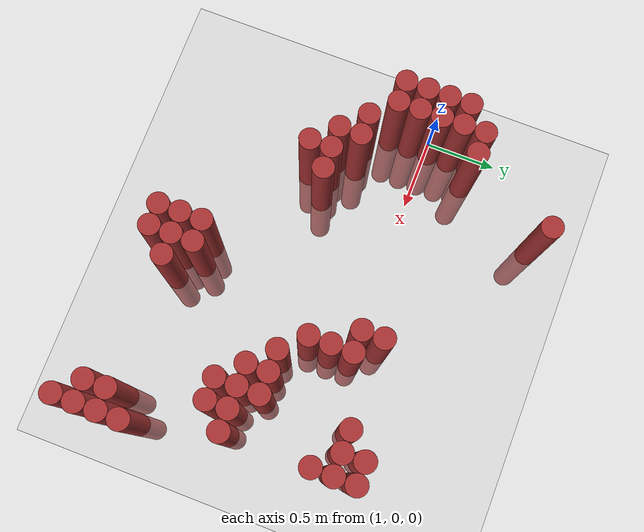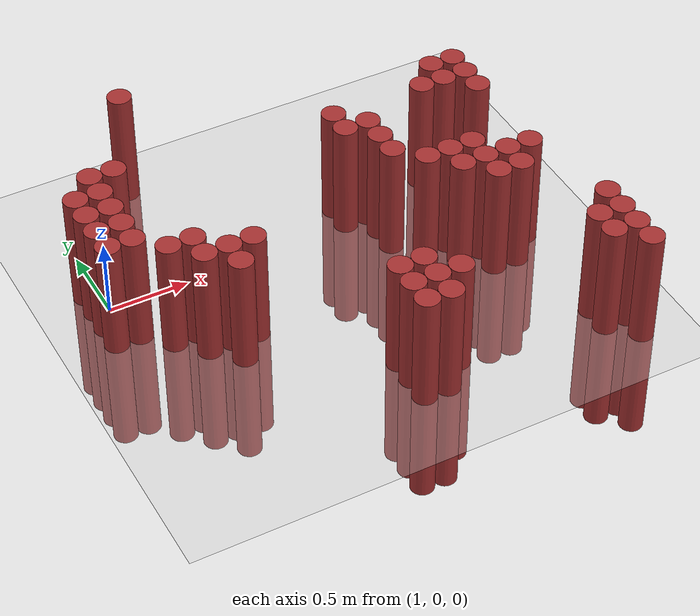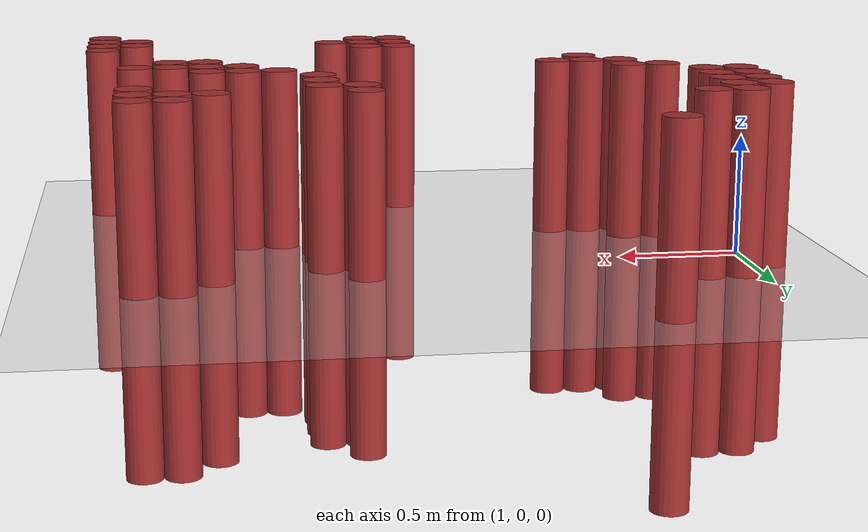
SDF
<sdf version="1.6">
 <world name="default">
  <model name="ground_plane">
   <static>1</static>
   <link name="link">
    <collision name="collision">
     <geometry><plane><normal>0 0 1</normal><size>100 100</size></plane></geometry>
     <surface><friction><ode><mu>100</mu><mu2>50</mu2></ode></friction></surface>
    </collision>
    <visual name="visual">
     <cast_shadows>0</cast_shadows>
     <geometry><plane><normal>0 0 1</normal><size>100 100</size></plane></geometry>
     <material>
      <script><uri>file://media/materials/scripts/gazebo.material</uri><name>Gazebo/Grey</name></script>
     </material>
    </visual>
   </link>
  </model>
  <model name="unit_cylinder_438">
   <static>1</static>
   <pose>0.925000 -0.275000 0.000000 0.000000 0.000000 0.000000</pose>
   <link name="link">
    <inertial>
     <mass>1</mass>
     <inertia><ixx>0.145833</ixx><ixy>0</ixy><ixz>0</ixz><iyy>0.145833</iyy><iyz>0</iyz><izz>0.125</izz></inertia>
    </inertial>
    <collision name="collision">
     <geometry><cylinder><radius>0.075000</radius><length>1.5</length></cylinder></geometry>
    </collision>
    <visual name="visual">
     <geometry><cylinder><radius>0.075000</radius><length>1.5</length></cylinder></geometry>
     <material>
      <ambient>0.648000 0.192000 0.192000 1</ambient>
      <diffuse>0.648000 0.192000 0.192000 1</diffuse>
     </material>
     <material>
      <script><name>Gazebo/Grey</name><uri>file://media/materials/scripts/gazebo.material</uri></script>
     </material>
    </visual>
   </link>
  </model>
  <model name="unit_cylinder_439">
   <static>1</static>
   <pose>0.925000 -0.125000 0.000000 0.000000 0.000000 0.000000</pose>
   <link name="link">
    <inertial>
     <mass>1</mass>
     <inertia><ixx>0.145833</ixx><ixy>0</ixy><ixz>0</ixz><iyy>0.145833</iyy><iyz>0</iyz><izz>0.125</izz></inertia>
    </inertial>
    <collision name="collision">
     <geometry><cylinder><radius>0.075000</radius><length>1.5</length></cylinder></geometry>
    </collision>
    <visual name="visual">
     <geometry><cylinder><radius>0.075000</radius><length>1.5</length></cylinder></geometry>
     <material>
      <ambient>0.648000 0.192000 0.192000 1</ambient>
      <diffuse>0.648000 0.192000 0.192000 1</diffuse>
     </material>
     <material>
      <script><name>Gazebo/Grey</name><uri>file://media/materials/scripts/gazebo.material</uri></script>
     </material>
    </visual>
   </link>
  </model>
  <model name="unit_cylinder_440">
   <static>1</static>
   <pose>0.925000 0.025000 0.000000 0.000000 0.000000 0.000000</pose>
   <link name="link">
    <inertial>
     <mass>1</mass>
     <inertia><ixx>0.145833</ixx><ixy>0</ixy><ixz>0</ixz><iyy>0.145833</iyy><iyz>0</iyz><izz>0.125</izz></inertia>
    </inertial>
    <collision name="collision">
     <geometry><cylinder><radius>0.075000</radius><length>1.5</length></cylinder></geometry>
    </collision>
    <visual name="visual">
     <geometry><cylinder><radius>0.075000</radius><length>1.5</length></cylinder></geometry>
     <material>
      <ambient>0.648000 0.192000 0.192000 1</ambient>
      <diffuse>0.648000 0.192000 0.192000 1</diffuse>
     </material>
     <material>
      <script><name>Gazebo/Grey</name><uri>file://media/materials/scripts/gazebo.material</uri></script>
     </material>
    </visual>
   </link>
  </model>
  <model name="unit_cylinder_441">
   <static>1</static>
   <pose>0.925000 0.175000 0.000000 0.000000 0.000000 0.000000</pose>
   <link name="link">
    <inertial>
     <mass>1</mass>
     <inertia><ixx>0.145833</ixx><ixy>0</ixy><ixz>0</ixz><iyy>0.145833</iyy><iyz>0</iyz><izz>0.125</izz></inertia>
    </inertial>
    <collision name="collision">
     <geometry><cylinder><radius>0.075000</radius><length>1.5</length></cylinder></geometry>
    </collision>
    <visual name="visual">
     <geometry><cylinder><radius>0.075000</radius><length>1.5</length></cylinder></geometry>
     <material>
      <ambient>0.648000 0.192000 0.192000 1</ambient>
      <diffuse>0.648000 0.192000 0.192000 1</diffuse>
     </material>
     <material>
      <script><name>Gazebo/Grey</name><uri>file://media/materials/scripts/gazebo.material</uri></script>
     </material>
    </visual>
   </link>
  </model>
  <model name="unit_cylinder_445">
   <static>1</static>
   <pose>1.075000 -0.275000 0.000000 0.000000 0.000000 0.000000</pose>
   <link name="link">
    <inertial>
     <mass>1</mass>
     <inertia><ixx>0.145833</ixx><ixy>0</ixy><ixz>0</ixz><iyy>0.145833</iyy><iyz>0</iyz><izz>0.125</izz></inertia>
    </inertial>
    <collision name="collision">
     <geometry><cylinder><radius>0.075000</radius><length>1.5</length></cylinder></geometry>
    </collision>
    <visual name="visual">
     <geometry><cylinder><radius>0.075000</radius><length>1.5</length></cylinder></geometry>
     <material>
      <ambient>0.648000 0.192000 0.192000 1</ambient>
      <diffuse>0.648000 0.192000 0.192000 1</diffuse>
     </material>
     <material>
      <script><name>Gazebo/Grey</name><uri>file://media/materials/scripts/gazebo.material</uri></script>
     </material>
    </visual>
   </link>
  </model>
  <model name="unit_cylinder_446">
   <static>1</static>
   <pose>1.075000 -0.125000 0.000000 0.000000 0.000000 0.000000</pose>
   <link name="link">
    <inertial>
     <mass>1</mass>
     <inertia><ixx>0.145833</ixx><ixy>0</ixy><ixz>0</ixz><iyy>0.145833</iyy><iyz>0</iyz><izz>0.125</izz></inertia>
    </inertial>
    <collision name="collision">
     <geometry><cylinder><radius>0.075000</radius><length>1.5</length></cylinder></geometry>
    </collision>
    <visual name="visual">
     <geometry><cylinder><radius>0.075000</radius><length>1.5</length></cylinder></geometry>
     <material>
      <ambient>0.648000 0.192000 0.192000 1</ambient>
      <diffuse>0.648000 0.192000 0.192000 1</diffuse>
     </material>
     <material>
      <script><name>Gazebo/Grey</name><uri>file://media/materials/scripts/gazebo.material</uri></script>
     </material>
    </visual>
   </link>
  </model>
  <model name="unit_cylinder_447">
   <static>1</static>
   <pose>1.075000 0.025000 0.000000 0.000000 0.000000 0.000000</pose>
   <link name="link">
    <inertial>
     <mass>1</mass>
     <inertia><ixx>0.145833</ixx><ixy>0</ixy><ixz>0</ixz><iyy>0.145833</iyy><iyz>0</iyz><izz>0.125</izz></inertia>
    </inertial>
    <collision name="collision">
     <geometry><cylinder><radius>0.075000</radius><length>1.5</length></cylinder></geometry>
    </collision>
    <visual name="visual">
     <geometry><cylinder><radius>0.075000</radius><length>1.5</length></cylinder></geometry>
     <material>
      <ambient>0.648000 0.192000 0.192000 1</ambient>
      <diffuse>0.648000 0.192000 0.192000 1</diffuse>
     </material>
     <material>
      <script><name>Gazebo/Grey</name><uri>file://media/materials/scripts/gazebo.material</uri></script>
     </material>
    </visual>
   </link>
  </model>
  <model name="unit_cylinder_448">
   <static>1</static>
   <pose>1.075000 0.175000 0.000000 0.000000 0.000000 0.000000</pose>
   <link name="link">
    <inertial>
     <mass>1</mass>
     <inertia><ixx>0.145833</ixx><ixy>0</ixy><ixz>0</ixz><iyy>0.145833</iyy><iyz>0</iyz><izz>0.125</izz></inertia>
    </inertial>
    <collision name="collision">
     <geometry><cylinder><radius>0.075000</radius><length>1.5</length></cylinder></geometry>
    </collision>
    <visual name="visual">
     <geometry><cylinder><radius>0.075000</radius><length>1.5</length></cylinder></geometry>
     <material>
      <ambient>0.648000 0.192000 0.192000 1</ambient>
      <diffuse>0.648000 0.192000 0.192000 1</diffuse>
     </material>
     <material>
      <script><name>Gazebo/Grey</name><uri>file://media/materials/scripts/gazebo.material</uri></script>
     </material>
    </visual>
   </link>
  </model>
  <model name="unit_cylinder_449">
   <static>1</static>
   <pose>1.075000 0.325000 0.000000 0.000000 0.000000 0.000000</pose>
   <link name="link">
    <inertial>
     <mass>1</mass>
     <inertia><ixx>0.145833</ixx><ixy>0</ixy><ixz>0</ixz><iyy>0.145833</iyy><iyz>0</iyz><izz>0.125</izz></inertia>
    </inertial>
    <collision name="collision">
     <geometry><cylinder><radius>0.075000</radius><length>1.5</length></cylinder></geometry>
    </collision>
    <visual name="visual">
     <geometry><cylinder><radius>0.075000</radius><length>1.5</length></cylinder></geometry>
     <material>
      <ambient>0.648000 0.192000 0.192000 1</ambient>
      <diffuse>0.648000 0.192000 0.192000 1</diffuse>
     </material>
     <material>
      <script><name>Gazebo/Grey</name><uri>file://media/materials/scripts/gazebo.material</uri></script>
     </material>
    </visual>
   </link>
  </model>
  <model name="unit_cylinder_453">
   <static>1</static>
   <pose>1.225000 -0.425000 0.000000 0.000000 0.000000 0.000000</pose>
   <link name="link">
    <inertial>
     <mass>1</mass>
     <inertia><ixx>0.145833</ixx><ixy>0</ixy><ixz>0</ixz><iyy>0.145833</iyy><iyz>0</iyz><izz>0.125</izz></inertia>
    </inertial>
    <collision name="collision">
     <geometry><cylinder><radius>0.075000</radius><length>1.5</length></cylinder></geometry>
    </collision>
    <visual name="visual">
     <geometry><cylinder><radius>0.075000</radius><length>1.5</length></cylinder></geometry>
     <material>
      <ambient>0.648000 0.192000 0.192000 1</ambient>
      <diffuse>0.648000 0.192000 0.192000 1</diffuse>
     </material>
     <material>
      <script><name>Gazebo/Grey</name><uri>file://media/materials/scripts/gazebo.material</uri></script>
     </material>
    </visual>
   </link>
  </model>
  <model name="unit_cylinder_454">
   <static>1</static>
   <pose>1.225000 0.325000 0.000000 0.000000 0.000000 0.000000</pose>
   <link name="link">
    <inertial>
     <mass>1</mass>
     <inertia><ixx>0.145833</ixx><ixy>0</ixy><ixz>0</ixz><iyy>0.145833</iyy><iyz>0</iyz><izz>0.125</izz></inertia>
    </inertial>
    <collision name="collision">
     <geometry><cylinder><radius>0.075000</radius><length>1.5</length></cylinder></geometry>
    </collision>
    <visual name="visual">
     <geometry><cylinder><radius>0.075000</radius><length>1.5</length></cylinder></geometry>
     <material>
      <ambient>0.648000 0.192000 0.192000 1</ambient>
      <diffuse>0.648000 0.192000 0.192000 1</diffuse>
     </material>
     <material>
      <script><name>Gazebo/Grey</name><uri>file://media/materials/scripts/gazebo.material</uri></script>
     </material>
    </visual>
   </link>
  </model>
  <model name="unit_cylinder_458">
   <static>1</static>
   <pose>1.375000 -0.575000 0.000000 0.000000 0.000000 0.000000</pose>
   <link name="link">
    <inertial>
     <mass>1</mass>
     <inertia><ixx>0.145833</ixx><ixy>0</ixy><ixz>0</ixz><iyy>0.145833</iyy><iyz>0</iyz><izz>0.125</izz></inertia>
    </inertial>
    <collision name="collision">
     <geometry><cylinder><radius>0.075000</radius><length>1.5</length></cylinder></geometry>
    </collision>
    <visual name="visual">
     <geometry><cylinder><radius>0.075000</radius><length>1.5</length></cylinder></geometry>
     <material>
      <ambient>0.648000 0.192000 0.192000 1</ambient>
      <diffuse>0.648000 0.192000 0.192000 1</diffuse>
     </material>
     <material>
      <script><name>Gazebo/Grey</name><uri>file://media/materials/scripts/gazebo.material</uri></script>
     </material>
    </visual>
   </link>
  </model>
  <model name="unit_cylinder_459">
   <static>1</static>
   <pose>1.375000 -0.425000 0.000000 0.000000 0.000000 0.000000</pose>
   <link name="link">
    <inertial>
     <mass>1</mass>
     <inertia><ixx>0.145833</ixx><ixy>0</ixy><ixz>0</ixz><iyy>0.145833</iyy><iyz>0</iyz><izz>0.125</izz></inertia>
    </inertial>
    <collision name="collision">
     <geometry><cylinder><radius>0.075000</radius><length>1.5</length></cylinder></geometry>
    </collision>
    <visual name="visual">
     <geometry><cylinder><radius>0.075000</radius><length>1.5</length></cylinder></geometry>
     <material>
      <ambient>0.648000 0.192000 0.192000 1</ambient>
      <diffuse>0.648000 0.192000 0.192000 1</diffuse>
     </material>
     <material>
      <script><name>Gazebo/Grey</name><uri>file://media/materials/scripts/gazebo.material</uri></script>
     </material>
    </visual>
   </link>
  </model>
  <model name="unit_cylinder_464">
   <static>1</static>
   <pose>1.525000 -0.725000 0.000000 0.000000 0.000000 0.000000</pose>
   <link name="link">
    <inertial>
     <mass>1</mass>
     <inertia><ixx>0.145833</ixx><ixy>0</ixy><ixz>0</ixz><iyy>0.145833</iyy><iyz>0</iyz><izz>0.125</izz></inertia>
    </inertial>
    <collision name="collision">
     <geometry><cylinder><radius>0.075000</radius><length>1.5</length></cylinder></geometry>
    </collision>
    <visual name="visual">
     <geometry><cylinder><radius>0.075000</radius><length>1.5</length></cylinder></geometry>
     <material>
      <ambient>0.648000 0.192000 0.192000 1</ambient>
      <diffuse>0.648000 0.192000 0.192000 1</diffuse>
     </material>
     <material>
      <script><name>Gazebo/Grey</name><uri>file://media/materials/scripts/gazebo.material</uri></script>
     </material>
    </visual>
   </link>
  </model>
  <model name="unit_cylinder_465">
   <static>1</static>
   <pose>1.525000 -0.575000 0.000000 0.000000 0.000000 0.000000</pose>
   <link name="link">
    <inertial>
     <mass>1</mass>
     <inertia><ixx>0.145833</ixx><ixy>0</ixy><ixz>0</ixz><iyy>0.145833</iyy><iyz>0</iyz><izz>0.125</izz></inertia>
    </inertial>
    <collision name="collision">
     <geometry><cylinder><radius>0.075000</radius><length>1.5</length></cylinder></geometry>
    </collision>
    <visual name="visual">
     <geometry><cylinder><radius>0.075000</radius><length>1.5</length></cylinder></geometry>
     <material>
      <ambient>0.648000 0.192000 0.192000 1</ambient>
      <diffuse>0.648000 0.192000 0.192000 1</diffuse>
     </material>
     <material>
      <script><name>Gazebo/Grey</name><uri>file://media/materials/scripts/gazebo.material</uri></script>
     </material>
    </visual>
   </link>
  </model>
  <model name="unit_cylinder_466">
   <static>1</static>
   <pose>1.525000 0.925000 0.000000 0.000000 0.000000 0.000000</pose>
   <link name="link">
    <inertial>
     <mass>1</mass>
     <inertia><ixx>0.145833</ixx><ixy>0</ixy><ixz>0</ixz><iyy>0.145833</iyy><iyz>0</iyz><izz>0.125</izz></inertia>
    </inertial>
    <collision name="collision">
     <geometry><cylinder><radius>0.075000</radius><length>1.5</length></cylinder></geometry>
    </collision>
    <visual name="visual">
     <geometry><cylinder><radius>0.075000</radius><length>1.5</length></cylinder></geometry>
     <material>
      <ambient>0.648000 0.192000 0.192000 1</ambient>
      <diffuse>0.648000 0.192000 0.192000 1</diffuse>
     </material>
     <material>
      <script><name>Gazebo/Grey</name><uri>file://media/materials/scripts/gazebo.material</uri></script>
     </material>
    </visual>
   </link>
  </model>
  <model name="unit_cylinder_472">
   <static>1</static>
   <pose>1.675000 -0.575000 0.000000 0.000000 0.000000 0.000000</pose>
   <link name="link">
    <inertial>
     <mass>1</mass>
     <inertia><ixx>0.145833</ixx><ixy>0</ixy><ixz>0</ixz><iyy>0.145833</iyy><iyz>0</iyz><izz>0.125</izz></inertia>
    </inertial>
    <collision name="collision">
     <geometry><cylinder><radius>0.075000</radius><length>1.5</length></cylinder></geometry>
    </collision>
    <visual name="visual">
     <geometry><cylinder><radius>0.075000</radius><length>1.5</length></cylinder></geometry>
     <material>
      <ambient>0.648000 0.192000 0.192000 1</ambient>
      <diffuse>0.648000 0.192000 0.192000 1</diffuse>
     </material>
     <material>
      <script><name>Gazebo/Grey</name><uri>file://media/materials/scripts/gazebo.material</uri></script>
     </material>
    </visual>
   </link>
  </model>
  <model name="unit_cylinder_488">
   <static>1</static>
   <pose>2.275000 -1.475000 0.000000 0.000000 0.000000 0.000000</pose>
   <link name="link">
    <inertial>
     <mass>1</mass>
     <inertia><ixx>0.145833</ixx><ixy>0</ixy><ixz>0</ixz><iyy>0.145833</iyy><iyz>0</iyz><izz>0.125</izz></inertia>
    </inertial>
    <collision name="collision">
     <geometry><cylinder><radius>0.075000</radius><length>1.5</length></cylinder></geometry>
    </collision>
    <visual name="visual">
     <geometry><cylinder><radius>0.075000</radius><length>1.5</length></cylinder></geometry>
     <material>
      <ambient>0.648000 0.192000 0.192000 1</ambient>
      <diffuse>0.648000 0.192000 0.192000 1</diffuse>
     </material>
     <material>
      <script><name>Gazebo/Grey</name><uri>file://media/materials/scripts/gazebo.material</uri></script>
     </material>
    </visual>
   </link>
  </model>
  <model name="unit_cylinder_489">
   <static>1</static>
   <pose>2.275000 -1.325000 0.000000 0.000000 0.000000 0.000000</pose>
   <link name="link">
    <inertial>
     <mass>1</mass>
     <inertia><ixx>0.145833</ixx><ixy>0</ixy><ixz>0</ixz><iyy>0.145833</iyy><iyz>0</iyz><izz>0.125</izz></inertia>
    </inertial>
    <collision name="collision">
     <geometry><cylinder><radius>0.075000</radius><length>1.5</length></cylinder></geometry>
    </collision>
    <visual name="visual">
     <geometry><cylinder><radius>0.075000</radius><length>1.5</length></cylinder></geometry>
     <material>
      <ambient>0.648000 0.192000 0.192000 1</ambient>
      <diffuse>0.648000 0.192000 0.192000 1</diffuse>
     </material>
     <material>
      <script><name>Gazebo/Grey</name><uri>file://media/materials/scripts/gazebo.material</uri></script>
     </material>
    </visual>
   </link>
  </model>
  <model name="unit_cylinder_490">
   <static>1</static>
   <pose>2.275000 -1.175000 0.000000 0.000000 0.000000 0.000000</pose>
   <link name="link">
    <inertial>
     <mass>1</mass>
     <inertia><ixx>0.145833</ixx><ixy>0</ixy><ixz>0</ixz><iyy>0.145833</iyy><iyz>0</iyz><izz>0.125</izz></inertia>
    </inertial>
    <collision name="collision">
     <geometry><cylinder><radius>0.075000</radius><length>1.5</length></cylinder></geometry>
    </collision>
    <visual name="visual">
     <geometry><cylinder><radius>0.075000</radius><length>1.5</length></cylinder></geometry>
     <material>
      <ambient>0.648000 0.192000 0.192000 1</ambient>
      <diffuse>0.648000 0.192000 0.192000 1</diffuse>
     </material>
     <material>
      <script><name>Gazebo/Grey</name><uri>file://media/materials/scripts/gazebo.material</uri></script>
     </material>
    </visual>
   </link>
  </model>
  <model name="unit_cylinder_496">
   <static>1</static>
   <pose>2.425000 -1.475000 0.000000 0.000000 0.000000 0.000000</pose>
   <link name="link">
    <inertial>
     <mass>1</mass>
     <inertia><ixx>0.145833</ixx><ixy>0</ixy><ixz>0</ixz><iyy>0.145833</iyy><iyz>0</iyz><izz>0.125</izz></inertia>
    </inertial>
    <collision name="collision">
     <geometry><cylinder><radius>0.075000</radius><length>1.5</length></cylinder></geometry>
    </collision>
    <visual name="visual">
     <geometry><cylinder><radius>0.075000</radius><length>1.5</length></cylinder></geometry>
     <material>
      <ambient>0.648000 0.192000 0.192000 1</ambient>
      <diffuse>0.648000 0.192000 0.192000 1</diffuse>
     </material>
     <material>
      <script><name>Gazebo/Grey</name><uri>file://media/materials/scripts/gazebo.material</uri></script>
     </material>
    </visual>
   </link>
  </model>
  <model name="unit_cylinder_497">
   <static>1</static>
   <pose>2.425000 -1.325000 0.000000 0.000000 0.000000 0.000000</pose>
   <link name="link">
    <inertial>
     <mass>1</mass>
     <inertia><ixx>0.145833</ixx><ixy>0</ixy><ixz>0</ixz><iyy>0.145833</iyy><iyz>0</iyz><izz>0.125</izz></inertia>
    </inertial>
    <collision name="collision">
     <geometry><cylinder><radius>0.075000</radius><length>1.5</length></cylinder></geometry>
    </collision>
    <visual name="visual">
     <geometry><cylinder><radius>0.075000</radius><length>1.5</length></cylinder></geometry>
     <material>
      <ambient>0.648000 0.192000 0.192000 1</ambient>
      <diffuse>0.648000 0.192000 0.192000 1</diffuse>
     </material>
     <material>
      <script><name>Gazebo/Grey</name><uri>file://media/materials/scripts/gazebo.material</uri></script>
     </material>
    </visual>
   </link>
  </model>
  <model name="unit_cylinder_498">
   <static>1</static>
   <pose>2.425000 -1.175000 0.000000 0.000000 0.000000 0.000000</pose>
   <link name="link">
    <inertial>
     <mass>1</mass>
     <inertia><ixx>0.145833</ixx><ixy>0</ixy><ixz>0</ixz><iyy>0.145833</iyy><iyz>0</iyz><izz>0.125</izz></inertia>
    </inertial>
    <collision name="collision">
     <geometry><cylinder><radius>0.075000</radius><length>1.5</length></cylinder></geometry>
    </collision>
    <visual name="visual">
     <geometry><cylinder><radius>0.075000</radius><length>1.5</length></cylinder></geometry>
     <material>
      <ambient>0.648000 0.192000 0.192000 1</ambient>
      <diffuse>0.648000 0.192000 0.192000 1</diffuse>
     </material>
     <material>
      <script><name>Gazebo/Grey</name><uri>file://media/materials/scripts/gazebo.material</uri></script>
     </material>
    </visual>
   </link>
  </model>
  <model name="unit_cylinder_505">
   <static>1</static>
   <pose>2.575000 -1.325000 0.000000 0.000000 0.000000 0.000000</pose>
   <link name="link">
    <inertial>
     <mass>1</mass>
     <inertia><ixx>0.145833</ixx><ixy>0</ixy><ixz>0</ixz><iyy>0.145833</iyy><iyz>0</iyz><izz>0.125</izz></inertia>
    </inertial>
    <collision name="collision">
     <geometry><cylinder><radius>0.075000</radius><length>1.5</length></cylinder></geometry>
    </collision>
    <visual name="visual">
     <geometry><cylinder><radius>0.075000</radius><length>1.5</length></cylinder></geometry>
     <material>
      <ambient>0.648000 0.192000 0.192000 1</ambient>
      <diffuse>0.648000 0.192000 0.192000 1</diffuse>
     </material>
     <material>
      <script><name>Gazebo/Grey</name><uri>file://media/materials/scripts/gazebo.material</uri></script>
     </material>
    </visual>
   </link>
  </model>
  <model name="unit_cylinder_506">
   <static>1</static>
   <pose>2.575000 0.025000 0.000000 0.000000 0.000000 0.000000</pose>
   <link name="link">
    <inertial>
     <mass>1</mass>
     <inertia><ixx>0.145833</ixx><ixy>0</ixy><ixz>0</ixz><iyy>0.145833</iyy><iyz>0</iyz><izz>0.125</izz></inertia>
    </inertial>
    <collision name="collision">
     <geometry><cylinder><radius>0.075000</radius><length>1.5</length></cylinder></geometry>
    </collision>
    <visual name="visual">
     <geometry><cylinder><radius>0.075000</radius><length>1.5</length></cylinder></geometry>
     <material>
      <ambient>0.648000 0.192000 0.192000 1</ambient>
      <diffuse>0.648000 0.192000 0.192000 1</diffuse>
     </material>
     <material>
      <script><name>Gazebo/Grey</name><uri>file://media/materials/scripts/gazebo.material</uri></script>
     </material>
    </visual>
   </link>
  </model>
  <model name="unit_cylinder_507">
   <static>1</static>
   <pose>2.575000 0.175000 0.000000 0.000000 0.000000 0.000000</pose>
   <link name="link">
    <inertial>
     <mass>1</mass>
     <inertia><ixx>0.145833</ixx><ixy>0</ixy><ixz>0</ixz><iyy>0.145833</iyy><iyz>0</iyz><izz>0.125</izz></inertia>
    </inertial>
    <collision name="collision">
     <geometry><cylinder><radius>0.075000</radius><length>1.5</length></cylinder></geometry>
    </collision>
    <visual name="visual">
     <geometry><cylinder><radius>0.075000</radius><length>1.5</length></cylinder></geometry>
     <material>
      <ambient>0.648000 0.192000 0.192000 1</ambient>
      <diffuse>0.648000 0.192000 0.192000 1</diffuse>
     </material>
     <material>
      <script><name>Gazebo/Grey</name><uri>file://media/materials/scripts/gazebo.material</uri></script>
     </material>
    </visual>
   </link>
  </model>
  <model name="unit_cylinder_512">
   <static>1</static>
   <pose>2.725000 -0.275000 0.000000 0.000000 0.000000 0.000000</pose>
   <link name="link">
    <inertial>
     <mass>1</mass>
     <inertia><ixx>0.145833</ixx><ixy>0</ixy><ixz>0</ixz><iyy>0.145833</iyy><iyz>0</iyz><izz>0.125</izz></inertia>
    </inertial>
    <collision name="collision">
     <geometry><cylinder><radius>0.075000</radius><length>1.5</length></cylinder></geometry>
    </collision>
    <visual name="visual">
     <geometry><cylinder><radius>0.075000</radius><length>1.5</length></cylinder></geometry>
     <material>
      <ambient>0.648000 0.192000 0.192000 1</ambient>
      <diffuse>0.648000 0.192000 0.192000 1</diffuse>
     </material>
     <material>
      <script><name>Gazebo/Grey</name><uri>file://media/materials/scripts/gazebo.material</uri></script>
     </material>
    </visual>
   </link>
  </model>
  <model name="unit_cylinder_513">
   <static>1</static>
   <pose>2.725000 -0.125000 0.000000 0.000000 0.000000 0.000000</pose>
   <link name="link">
    <inertial>
     <mass>1</mass>
     <inertia><ixx>0.145833</ixx><ixy>0</ixy><ixz>0</ixz><iyy>0.145833</iyy><iyz>0</iyz><izz>0.125</izz></inertia>
    </inertial>
    <collision name="collision">
     <geometry><cylinder><radius>0.075000</radius><length>1.5</length></cylinder></geometry>
    </collision>
    <visual name="visual">
     <geometry><cylinder><radius>0.075000</radius><length>1.5</length></cylinder></geometry>
     <material>
      <ambient>0.648000 0.192000 0.192000 1</ambient>
      <diffuse>0.648000 0.192000 0.192000 1</diffuse>
     </material>
     <material>
      <script><name>Gazebo/Grey</name><uri>file://media/materials/scripts/gazebo.material</uri></script>
     </material>
    </visual>
   </link>
  </model>
  <model name="unit_cylinder_514">
   <static>1</static>
   <pose>2.725000 0.025000 0.000000 0.000000 0.000000 0.000000</pose>
   <link name="link">
    <inertial>
     <mass>1</mass>
     <inertia><ixx>0.145833</ixx><ixy>0</ixy><ixz>0</ixz><iyy>0.145833</iyy><iyz>0</iyz><izz>0.125</izz></inertia>
    </inertial>
    <collision name="collision">
     <geometry><cylinder><radius>0.075000</radius><length>1.5</length></cylinder></geometry>
    </collision>
    <visual name="visual">
     <geometry><cylinder><radius>0.075000</radius><length>1.5</length></cylinder></geometry>
     <material>
      <ambient>0.648000 0.192000 0.192000 1</ambient>
      <diffuse>0.648000 0.192000 0.192000 1</diffuse>
     </material>
     <material>
      <script><name>Gazebo/Grey</name><uri>file://media/materials/scripts/gazebo.material</uri></script>
     </material>
    </visual>
   </link>
  </model>
  <model name="unit_cylinder_523">
   <static>1</static>
   <pose>2.875000 -0.425000 0.000000 0.000000 0.000000 0.000000</pose>
   <link name="link">
    <inertial>
     <mass>1</mass>
     <inertia><ixx>0.145833</ixx><ixy>0</ixy><ixz>0</ixz><iyy>0.145833</iyy><iyz>0</iyz><izz>0.125</izz></inertia>
    </inertial>
    <collision name="collision">
     <geometry><cylinder><radius>0.075000</radius><length>1.5</length></cylinder></geometry>
    </collision>
    <visual name="visual">
     <geometry><cylinder><radius>0.075000</radius><length>1.5</length></cylinder></geometry>
     <material>
      <ambient>0.648000 0.192000 0.192000 1</ambient>
      <diffuse>0.648000 0.192000 0.192000 1</diffuse>
     </material>
     <material>
      <script><name>Gazebo/Grey</name><uri>file://media/materials/scripts/gazebo.material</uri></script>
     </material>
    </visual>
   </link>
  </model>
  <model name="unit_cylinder_530">
   <static>1</static>
   <pose>3.025000 -0.575000 0.000000 0.000000 0.000000 0.000000</pose>
   <link name="link">
    <inertial>
     <mass>1</mass>
     <inertia><ixx>0.145833</ixx><ixy>0</ixy><ixz>0</ixz><iyy>0.145833</iyy><iyz>0</iyz><izz>0.125</izz></inertia>
    </inertial>
    <collision name="collision">
     <geometry><cylinder><radius>0.075000</radius><length>1.5</length></cylinder></geometry>
    </collision>
    <visual name="visual">
     <geometry><cylinder><radius>0.075000</radius><length>1.5</length></cylinder></geometry>
     <material>
      <ambient>0.648000 0.192000 0.192000 1</ambient>
      <diffuse>0.648000 0.192000 0.192000 1</diffuse>
     </material>
     <material>
      <script><name>Gazebo/Grey</name><uri>file://media/materials/scripts/gazebo.material</uri></script>
     </material>
    </visual>
   </link>
  </model>
  <model name="unit_cylinder_531">
   <static>1</static>
   <pose>3.025000 -0.425000 0.000000 0.000000 0.000000 0.000000</pose>
   <link name="link">
    <inertial>
     <mass>1</mass>
     <inertia><ixx>0.145833</ixx><ixy>0</ixy><ixz>0</ixz><iyy>0.145833</iyy><iyz>0</iyz><izz>0.125</izz></inertia>
    </inertial>
    <collision name="collision">
     <geometry><cylinder><radius>0.075000</radius><length>1.5</length></cylinder></geometry>
    </collision>
    <visual name="visual">
     <geometry><cylinder><radius>0.075000</radius><length>1.5</length></cylinder></geometry>
     <material>
      <ambient>0.648000 0.192000 0.192000 1</ambient>
      <diffuse>0.648000 0.192000 0.192000 1</diffuse>
     </material>
     <material>
      <script><name>Gazebo/Grey</name><uri>file://media/materials/scripts/gazebo.material</uri></script>
     </material>
    </visual>
   </link>
  </model>
  <model name="unit_cylinder_537">
   <static>1</static>
   <pose>3.175000 -0.725000 0.000000 0.000000 0.000000 0.000000</pose>
   <link name="link">
    <inertial>
     <mass>1</mass>
     <inertia><ixx>0.145833</ixx><ixy>0</ixy><ixz>0</ixz><iyy>0.145833</iyy><iyz>0</iyz><izz>0.125</izz></inertia>
    </inertial>
    <collision name="collision">
     <geometry><cylinder><radius>0.075000</radius><length>1.5</length></cylinder></geometry>
    </collision>
    <visual name="visual">
     <geometry><cylinder><radius>0.075000</radius><length>1.5</length></cylinder></geometry>
     <material>
      <ambient>0.648000 0.192000 0.192000 1</ambient>
      <diffuse>0.648000 0.192000 0.192000 1</diffuse>
     </material>
     <material>
      <script><name>Gazebo/Grey</name><uri>file://media/materials/scripts/gazebo.material</uri></script>
     </material>
    </visual>
   </link>
  </model>
  <model name="unit_cylinder_538">
   <static>1</static>
   <pose>3.175000 -0.575000 0.000000 0.000000 0.000000 0.000000</pose>
   <link name="link">
    <inertial>
     <mass>1</mass>
     <inertia><ixx>0.145833</ixx><ixy>0</ixy><ixz>0</ixz><iyy>0.145833</iyy><iyz>0</iyz><izz>0.125</izz></inertia>
    </inertial>
    <collision name="collision">
     <geometry><cylinder><radius>0.075000</radius><length>1.5</length></cylinder></geometry>
    </collision>
    <visual name="visual">
     <geometry><cylinder><radius>0.075000</radius><length>1.5</length></cylinder></geometry>
     <material>
      <ambient>0.648000 0.192000 0.192000 1</ambient>
      <diffuse>0.648000 0.192000 0.192000 1</diffuse>
     </material>
     <material>
      <script><name>Gazebo/Grey</name><uri>file://media/materials/scripts/gazebo.material</uri></script>
     </material>
    </visual>
   </link>
  </model>
  <model name="unit_cylinder_539">
   <static>1</static>
   <pose>3.175000 -0.425000 0.000000 0.000000 0.000000 0.000000</pose>
   <link name="link">
    <inertial>
     <mass>1</mass>
     <inertia><ixx>0.145833</ixx><ixy>0</ixy><ixz>0</ixz><iyy>0.145833</iyy><iyz>0</iyz><izz>0.125</izz></inertia>
    </inertial>
    <collision name="collision">
     <geometry><cylinder><radius>0.075000</radius><length>1.5</length></cylinder></geometry>
    </collision>
    <visual name="visual">
     <geometry><cylinder><radius>0.075000</radius><length>1.5</length></cylinder></geometry>
     <material>
      <ambient>0.648000 0.192000 0.192000 1</ambient>
      <diffuse>0.648000 0.192000 0.192000 1</diffuse>
     </material>
     <material>
      <script><name>Gazebo/Grey</name><uri>file://media/materials/scripts/gazebo.material</uri></script>
     </material>
    </visual>
   </link>
  </model>
  <model name="unit_cylinder_540">
   <static>1</static>
   <pose>3.175000 0.175000 0.000000 0.000000 0.000000 0.000000</pose>
   <link name="link">
    <inertial>
     <mass>1</mass>
     <inertia><ixx>0.145833</ixx><ixy>0</ixy><ixz>0</ixz><iyy>0.145833</iyy><iyz>0</iyz><izz>0.125</izz></inertia>
    </inertial>
    <collision name="collision">
     <geometry><cylinder><radius>0.075000</radius><length>1.5</length></cylinder></geometry>
    </collision>
    <visual name="visual">
     <geometry><cylinder><radius>0.075000</radius><length>1.5</length></cylinder></geometry>
     <material>
      <ambient>0.648000 0.192000 0.192000 1</ambient>
      <diffuse>0.648000 0.192000 0.192000 1</diffuse>
     </material>
     <material>
      <script><name>Gazebo/Grey</name><uri>file://media/materials/scripts/gazebo.material</uri></script>
     </material>
    </visual>
   </link>
  </model>
  <model name="unit_cylinder_546">
   <static>1</static>
   <pose>3.325000 -0.725000 0.000000 0.000000 0.000000 0.000000</pose>
   <link name="link">
    <inertial>
     <mass>1</mass>
     <inertia><ixx>0.145833</ixx><ixy>0</ixy><ixz>0</ixz><iyy>0.145833</iyy><iyz>0</iyz><izz>0.125</izz></inertia>
    </inertial>
    <collision name="collision">
     <geometry><cylinder><radius>0.075000</radius><length>1.5</length></cylinder></geometry>
    </collision>
    <visual name="visual">
     <geometry><cylinder><radius>0.075000</radius><length>1.5</length></cylinder></geometry>
     <material>
      <ambient>0.648000 0.192000 0.192000 1</ambient>
      <diffuse>0.648000 0.192000 0.192000 1</diffuse>
     </material>
     <material>
      <script><name>Gazebo/Grey</name><uri>file://media/materials/scripts/gazebo.material</uri></script>
     </material>
    </visual>
   </link>
  </model>
  <model name="unit_cylinder_547">
   <static>1</static>
   <pose>3.325000 -0.575000 0.000000 0.000000 0.000000 0.000000</pose>
   <link name="link">
    <inertial>
     <mass>1</mass>
     <inertia><ixx>0.145833</ixx><ixy>0</ixy><ixz>0</ixz><iyy>0.145833</iyy><iyz>0</iyz><izz>0.125</izz></inertia>
    </inertial>
    <collision name="collision">
     <geometry><cylinder><radius>0.075000</radius><length>1.5</length></cylinder></geometry>
    </collision>
    <visual name="visual">
     <geometry><cylinder><radius>0.075000</radius><length>1.5</length></cylinder></geometry>
     <material>
      <ambient>0.648000 0.192000 0.192000 1</ambient>
      <diffuse>0.648000 0.192000 0.192000 1</diffuse>
     </material>
     <material>
      <script><name>Gazebo/Grey</name><uri>file://media/materials/scripts/gazebo.material</uri></script>
     </material>
    </visual>
   </link>
  </model>
  <model name="unit_cylinder_548">
   <static>1</static>
   <pose>3.325000 0.175000 0.000000 0.000000 0.000000 0.000000</pose>
   <link name="link">
    <inertial>
     <mass>1</mass>
     <inertia><ixx>0.145833</ixx><ixy>0</ixy><ixz>0</ixz><iyy>0.145833</iyy><iyz>0</iyz><izz>0.125</izz></inertia>
    </inertial>
    <collision name="collision">
     <geometry><cylinder><radius>0.075000</radius><length>1.5</length></cylinder></geometry>
    </collision>
    <visual name="visual">
     <geometry><cylinder><radius>0.075000</radius><length>1.5</length></cylinder></geometry>
     <material>
      <ambient>0.648000 0.192000 0.192000 1</ambient>
      <diffuse>0.648000 0.192000 0.192000 1</diffuse>
     </material>
     <material>
      <script><name>Gazebo/Grey</name><uri>file://media/materials/scripts/gazebo.material</uri></script>
     </material>
    </visual>
   </link>
  </model>
  <model name="unit_cylinder_549">
   <static>1</static>
   <pose>3.325000 0.325000 0.000000 0.000000 0.000000 0.000000</pose>
   <link name="link">
    <inertial>
     <mass>1</mass>
     <inertia><ixx>0.145833</ixx><ixy>0</ixy><ixz>0</ixz><iyy>0.145833</iyy><iyz>0</iyz><izz>0.125</izz></inertia>
    </inertial>
    <collision name="collision">
     <geometry><cylinder><radius>0.075000</radius><length>1.5</length></cylinder></geometry>
    </collision>
    <visual name="visual">
     <geometry><cylinder><radius>0.075000</radius><length>1.5</length></cylinder></geometry>
     <material>
      <ambient>0.648000 0.192000 0.192000 1</ambient>
      <diffuse>0.648000 0.192000 0.192000 1</diffuse>
     </material>
     <material>
      <script><name>Gazebo/Grey</name><uri>file://media/materials/scripts/gazebo.material</uri></script>
     </material>
    </visual>
   </link>
  </model>
  <model name="unit_cylinder_557">
   <static>1</static>
   <pose>3.475000 -1.475000 0.000000 0.000000 0.000000 0.000000</pose>
   <link name="link">
    <inertial>
     <mass>1</mass>
     <inertia><ixx>0.145833</ixx><ixy>0</ixy><ixz>0</ixz><iyy>0.145833</iyy><iyz>0</iyz><izz>0.125</izz></inertia>
    </inertial>
    <collision name="collision">
     <geometry><cylinder><radius>0.075000</radius><length>1.5</length></cylinder></geometry>
    </collision>
    <visual name="visual">
     <geometry><cylinder><radius>0.075000</radius><length>1.5</length></cylinder></geometry>
     <material>
      <ambient>0.648000 0.192000 0.192000 1</ambient>
      <diffuse>0.648000 0.192000 0.192000 1</diffuse>
     </material>
     <material>
      <script><name>Gazebo/Grey</name><uri>file://media/materials/scripts/gazebo.material</uri></script>
     </material>
    </visual>
   </link>
  </model>
  <model name="unit_cylinder_558">
   <static>1</static>
   <pose>3.475000 -1.325000 0.000000 0.000000 0.000000 0.000000</pose>
   <link name="link">
    <inertial>
     <mass>1</mass>
     <inertia><ixx>0.145833</ixx><ixy>0</ixy><ixz>0</ixz><iyy>0.145833</iyy><iyz>0</iyz><izz>0.125</izz></inertia>
    </inertial>
    <collision name="collision">
     <geometry><cylinder><radius>0.075000</radius><length>1.5</length></cylinder></geometry>
    </collision>
    <visual name="visual">
     <geometry><cylinder><radius>0.075000</radius><length>1.5</length></cylinder></geometry>
     <material>
      <ambient>0.648000 0.192000 0.192000 1</ambient>
      <diffuse>0.648000 0.192000 0.192000 1</diffuse>
     </material>
     <material>
      <script><name>Gazebo/Grey</name><uri>file://media/materials/scripts/gazebo.material</uri></script>
     </material>
    </visual>
   </link>
  </model>
  <model name="unit_cylinder_559">
   <static>1</static>
   <pose>3.475000 -0.575000 0.000000 0.000000 0.000000 0.000000</pose>
   <link name="link">
    <inertial>
     <mass>1</mass>
     <inertia><ixx>0.145833</ixx><ixy>0</ixy><ixz>0</ixz><iyy>0.145833</iyy><iyz>0</iyz><izz>0.125</izz></inertia>
    </inertial>
    <collision name="collision">
     <geometry><cylinder><radius>0.075000</radius><length>1.5</length></cylinder></geometry>
    </collision>
    <visual name="visual">
     <geometry><cylinder><radius>0.075000</radius><length>1.5</length></cylinder></geometry>
     <material>
      <ambient>0.648000 0.192000 0.192000 1</ambient>
      <diffuse>0.648000 0.192000 0.192000 1</diffuse>
     </material>
     <material>
      <script><name>Gazebo/Grey</name><uri>file://media/materials/scripts/gazebo.material</uri></script>
     </material>
    </visual>
   </link>
  </model>
  <model name="unit_cylinder_560">
   <static>1</static>
   <pose>3.475000 0.025000 0.000000 0.000000 0.000000 0.000000</pose>
   <link name="link">
    <inertial>
     <mass>1</mass>
     <inertia><ixx>0.145833</ixx><ixy>0</ixy><ixz>0</ixz><iyy>0.145833</iyy><iyz>0</iyz><izz>0.125</izz></inertia>
    </inertial>
    <collision name="collision">
     <geometry><cylinder><radius>0.075000</radius><length>1.5</length></cylinder></geometry>
    </collision>
    <visual name="visual">
     <geometry><cylinder><radius>0.075000</radius><length>1.5</length></cylinder></geometry>
     <material>
      <ambient>0.648000 0.192000 0.192000 1</ambient>
      <diffuse>0.648000 0.192000 0.192000 1</diffuse>
     </material>
     <material>
      <script><name>Gazebo/Grey</name><uri>file://media/materials/scripts/gazebo.material</uri></script>
     </material>
    </visual>
   </link>
  </model>
  <model name="unit_cylinder_561">
   <static>1</static>
   <pose>3.475000 0.175000 0.000000 0.000000 0.000000 0.000000</pose>
   <link name="link">
    <inertial>
     <mass>1</mass>
     <inertia><ixx>0.145833</ixx><ixy>0</ixy><ixz>0</ixz><iyy>0.145833</iyy><iyz>0</iyz><izz>0.125</izz></inertia>
    </inertial>
    <collision name="collision">
     <geometry><cylinder><radius>0.075000</radius><length>1.5</length></cylinder></geometry>
    </collision>
    <visual name="visual">
     <geometry><cylinder><radius>0.075000</radius><length>1.5</length></cylinder></geometry>
     <material>
      <ambient>0.648000 0.192000 0.192000 1</ambient>
      <diffuse>0.648000 0.192000 0.192000 1</diffuse>
     </material>
     <material>
      <script><name>Gazebo/Grey</name><uri>file://media/materials/scripts/gazebo.material</uri></script>
     </material>
    </visual>
   </link>
  </model>
  <model name="unit_cylinder_562">
   <static>1</static>
   <pose>3.475000 0.325000 0.000000 0.000000 0.000000 0.000000</pose>
   <link name="link">
    <inertial>
     <mass>1</mass>
     <inertia><ixx>0.145833</ixx><ixy>0</ixy><ixz>0</ixz><iyy>0.145833</iyy><iyz>0</iyz><izz>0.125</izz></inertia>
    </inertial>
    <collision name="collision">
     <geometry><cylinder><radius>0.075000</radius><length>1.5</length></cylinder></geometry>
    </collision>
    <visual name="visual">
     <geometry><cylinder><radius>0.075000</radius><length>1.5</length></cylinder></geometry>
     <material>
      <ambient>0.648000 0.192000 0.192000 1</ambient>
      <diffuse>0.648000 0.192000 0.192000 1</diffuse>
     </material>
     <material>
      <script><name>Gazebo/Grey</name><uri>file://media/materials/scripts/gazebo.material</uri></script>
     </material>
    </visual>
   </link>
  </model>
  <model name="unit_cylinder_567">
   <static>1</static>
   <pose>3.625000 -1.625000 0.000000 0.000000 0.000000 0.000000</pose>
   <link name="link">
    <inertial>
     <mass>1</mass>
     <inertia><ixx>0.145833</ixx><ixy>0</ixy><ixz>0</ixz><iyy>0.145833</iyy><iyz>0</iyz><izz>0.125</izz></inertia>
    </inertial>
    <collision name="collision">
     <geometry><cylinder><radius>0.075000</radius><length>1.5</length></cylinder></geometry>
    </collision>
    <visual name="visual">
     <geometry><cylinder><radius>0.075000</radius><length>1.5</length></cylinder></geometry>
     <material>
      <ambient>0.648000 0.192000 0.192000 1</ambient>
      <diffuse>0.648000 0.192000 0.192000 1</diffuse>
     </material>
     <material>
      <script><name>Gazebo/Grey</name><uri>file://media/materials/scripts/gazebo.material</uri></script>
     </material>
    </visual>
   </link>
  </model>
  <model name="unit_cylinder_568">
   <static>1</static>
   <pose>3.625000 -1.475000 0.000000 0.000000 0.000000 0.000000</pose>
   <link name="link">
    <inertial>
     <mass>1</mass>
     <inertia><ixx>0.145833</ixx><ixy>0</ixy><ixz>0</ixz><iyy>0.145833</iyy><iyz>0</iyz><izz>0.125</izz></inertia>
    </inertial>
    <collision name="collision">
     <geometry><cylinder><radius>0.075000</radius><length>1.5</length></cylinder></geometry>
    </collision>
    <visual name="visual">
     <geometry><cylinder><radius>0.075000</radius><length>1.5</length></cylinder></geometry>
     <material>
      <ambient>0.648000 0.192000 0.192000 1</ambient>
      <diffuse>0.648000 0.192000 0.192000 1</diffuse>
     </material>
     <material>
      <script><name>Gazebo/Grey</name><uri>file://media/materials/scripts/gazebo.material</uri></script>
     </material>
    </visual>
   </link>
  </model>
  <model name="unit_cylinder_569">
   <static>1</static>
   <pose>3.625000 -1.325000 0.000000 0.000000 0.000000 0.000000</pose>
   <link name="link">
    <inertial>
     <mass>1</mass>
     <inertia><ixx>0.145833</ixx><ixy>0</ixy><ixz>0</ixz><iyy>0.145833</iyy><iyz>0</iyz><izz>0.125</izz></inertia>
    </inertial>
    <collision name="collision">
     <geometry><cylinder><radius>0.075000</radius><length>1.5</length></cylinder></geometry>
    </collision>
    <visual name="visual">
     <geometry><cylinder><radius>0.075000</radius><length>1.5</length></cylinder></geometry>
     <material>
      <ambient>0.648000 0.192000 0.192000 1</ambient>
      <diffuse>0.648000 0.192000 0.192000 1</diffuse>
     </material>
     <material>
      <script><name>Gazebo/Grey</name><uri>file://media/materials/scripts/gazebo.material</uri></script>
     </material>
    </visual>
   </link>
  </model>
  <model name="unit_cylinder_570">
   <static>1</static>
   <pose>3.625000 -1.175000 0.000000 0.000000 0.000000 0.000000</pose>
   <link name="link">
    <inertial>
     <mass>1</mass>
     <inertia><ixx>0.145833</ixx><ixy>0</ixy><ixz>0</ixz><iyy>0.145833</iyy><iyz>0</iyz><izz>0.125</izz></inertia>
    </inertial>
    <collision name="collision">
     <geometry><cylinder><radius>0.075000</radius><length>1.5</length></cylinder></geometry>
    </collision>
    <visual name="visual">
     <geometry><cylinder><radius>0.075000</radius><length>1.5</length></cylinder></geometry>
     <material>
      <ambient>0.648000 0.192000 0.192000 1</ambient>
      <diffuse>0.648000 0.192000 0.192000 1</diffuse>
     </material>
     <material>
      <script><name>Gazebo/Grey</name><uri>file://media/materials/scripts/gazebo.material</uri></script>
     </material>
    </visual>
   </link>
  </model>
 </world>
</sdf>
